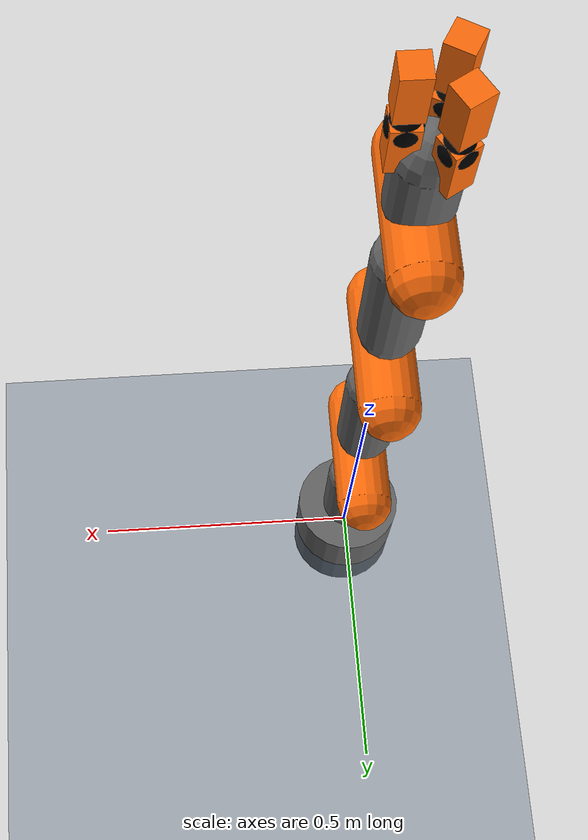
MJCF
<?xml version="1.0" encoding="utf-8"?>
<mujoco model="iiwa14_with_three_finger_gripper">
  <compiler angle="radian" autolimits="true"/>

  <option integrator="implicitfast"/>

  <default>
    <default class="iiwa">
      <material specular="0.5" shininess="0.25"/>
      <joint axis="0 0 1" damping="0.1"/>
      <general gaintype="fixed" biastype="affine" gainprm="2000" biasprm="0 -2000 -200"/>
      <default class="joint1">
        <joint range="-2.96706 2.96706"/>
        <general ctrlrange="-2.96706 2.96706"/>
        <default class="joint2">
          <joint range="-2.0944 2.0944"/>
          <general ctrlrange="-2.0944 2.0944"/>
        </default>
      </default>
      <default class="joint3">
        <joint range="-3.05433 3.05433"/>
        <general ctrlrange="-3.05433 3.05433"/>
      </default>
      <default class="visual">
        <geom type="capsule" size="0.05" contype="0" conaffinity="0" group="2" material="gray"/>
      </default>
      <default class="collision">
        <geom group="3"/>
      </default>
      <site size="0.001" rgba="1 0 0 1" group="4"/>

      <!-- Gripper defaults -->
      <default class="gripper">
        <joint damping="0.5" frictionloss="0.1"/>
        <default class="finger_joint">
          <joint range="0 0.12" axis="0 1 0"/>
          <general ctrlrange="0 0.12"/>
        </default>
        <default class="finger_bend_joint">
          <joint range="-1.57 1.57" axis="1 0 0" damping="0.1"/>
          <general ctrlrange="-1.57 1.57"/>
        </default>
      </default>
      <default class="gripper_visual">
        <geom type="box" size="0.02 0.02 0.04" contype="0" conaffinity="0" group="2" material="orange"/>
      </default>
      <default class="gripper_collision">
        <geom group="3"/>
      </default>
    </default>
  </default>

  <asset>
    <texture name="skybox" type="skybox" builtin="gradient" rgb1="0.3 0.5 0.7" rgb2="0 0 0" width="512" height="512"/>
    <texture name="grid" type="2d" builtin="checker" rgb1="0.1 0.2 0.3" rgb2="0.2 0.3 0.4" width="512" height="512" mark="edge" markrgb="0.8 0.8 0.8"/>
    <material name="grid" texture="grid" texrepeat="1 1" texuniform="true" reflectance="0.2"/>
    <material class="iiwa" name="gray" rgba="0.4 0.4 0.4 1"/>
    <material class="iiwa" name="light_gray" rgba="0.6 0.6 0.6 1"/>
    <material class="iiwa" name="black" rgba="0 0 0 1"/>
    <material class="iiwa" name="orange" rgba="1 0.423529 0.0392157 1"/>
  </asset>

  <worldbody>
    <light name="top" pos="0 0 2" mode="trackcom"/>
    <geom name="floor" pos="0 0 -0.01" size="1 1 0.01" type="plane" material="grid"/>
    <body name="base" childclass="iiwa">
      <inertial mass="5" pos="-0.1 0 0.07" diaginertia="0.05 0.06 0.03"/>
      <geom class="visual" type="cylinder" size="0.1 0.1"/>
      <geom class="collision" size="0.12" pos="0 0 0.03"/>
      <geom class="collision" size="0.08" pos="-0.08 0 0.103"/>
      <geom class="collision" size="0.08" pos="-0.08 0 0.04"/>
      <geom class="collision" size="0.1" pos="0 0 0.14"/>
      <body name="link1" pos="0 0 0.1575">
        <inertial mass="5.76" pos="0 -0.03 0.12" diaginertia="0.0333 0.033 0.0123"/>
        <joint name="joint1" class="joint1"/>
        <geom class="visual" type="capsule" size="0.05 0.1"/>
        <geom class="collision" size="0.08" pos="0 0 -0.0005"/>
        <geom class="collision" size="0.075" pos="0.01 -0.025 0.0425"/>
        <geom class="collision" size="0.075" pos="-0.01 -0.025 0.0425"/>
        <geom class="collision" size="0.07" pos="0.01 -0.045 0.1025"/>
        <geom class="collision" size="0.07" pos="-0.01 -0.045 0.1025"/>
        <body name="link2" pos="0 0 0.2025" quat="0 0 1 1">
          <inertial mass="6.35" pos="0.0003 0.059 0.042" diaginertia="0.0305 0.0304 0.011" quat="0 0 1 1"/>
          <joint name="joint2" class="joint2"/>
          <geom class="visual" type="capsule" size="0.05 0.1" material="orange"/>
          <geom class="collision" size="0.095" pos="0 0 -0.01"/>
          <geom class="collision" size="0.09" pos="0 0 0.045"/>
          <geom class="collision" size="0.07" pos="-0.01 0.04 0.054"/>
          <geom class="collision" size="0.065" pos="-0.01 0.09 0.04"/>
          <geom class="collision" size="0.065" pos="-0.01 0.13 0.02"/>
          <geom class="collision" size="0.07" pos="0.01 0.04 0.054"/>
          <geom class="collision" size="0.065" pos="0.01 0.09 0.04"/>
          <geom class="collision" size="0.065" pos="0.01 0.13 0.02"/>
          <geom class="collision" size="0.075" pos="0 0.18 0"/>
          <body name="link3" pos="0 0.2045 0" quat="0 0 1 1">
            <inertial mass="3.5" pos="0 0.03 0.13" diaginertia="0.025 0.0238 0.0076"/>
            <joint name="joint3" class="joint1"/>
            <geom class="visual" type="capsule" size="0.05 0.1"/>
            <geom class="collision" size="0.075" pos="0 0 0.0355"/>
            <geom class="collision" size="0.06" pos="0.01 0.023 0.0855"/>
            <geom class="collision" size="0.055" pos="0.01 0.048 0.1255"/>
            <geom class="collision" size="0.06" pos="0.01 0.056 0.1755"/>
            <geom class="collision" size="0.06" pos="-0.01 0.023 0.0855"/>
            <geom class="collision" size="0.055" pos="-0.01 0.048 0.1255"/>
            <geom class="collision" size="0.06" pos="-0.01 0.056 0.1755"/>
            <geom class="collision" size="0.075" pos="0 0.045 0.2155"/>
            <geom class="collision" size="0.075" pos="0 0 0.2155"/>
            <body name="link4" pos="0 0 0.2155" quat="1 1 0 0">
              <inertial mass="3.5" pos="0 0.067 0.034" diaginertia="0.017 0.0164 0.006" quat="1 1 0 0"/>
              <joint name="joint4" class="joint2"/>
              <geom class="visual" type="capsule" size="0.05 0.1" material="orange"/>
              <geom class="collision" size="0.078" pos="0 0.01 0.046"/>
              <geom class="collision" size="0.06" pos="0.01 0.06 0.052"/>
              <geom class="collision" size="0.065" pos="0.01 0.12 0.034"/>
              <geom class="collision" size="0.06" pos="-0.01 0.06 0.052"/>
              <geom class="collision" size="0.065" pos="-0.01 0.12 0.034"/>
              <geom class="collision" size="0.075" pos="0 0.184 0"/>
              <body name="link5" pos="0 0.1845 0" quat="0 0 1 1">
                <inertial mass="3.5" pos="0.0001 0.021 0.076" diaginertia="0.01 0.0087 0.00449"/>
                <joint name="joint5" class="joint1"/>
                <geom class="visual" type="capsule" size="0.05 0.1"/>
                <geom class="collision" size="0.075" pos="0 0 0.0335"/>
                <geom class="collision" size="0.05" pos="-0.012 0.031 0.0755"/>
                <geom class="collision" size="0.05" pos="0.012 0.031 0.0755"/>
                <geom class="collision" size="0.04" pos="-0.012 0.06 0.1155"/>
                <geom class="collision" size="0.04" pos="0.012 0.06 0.1155"/>
                <geom class="collision" size="0.04" pos="-0.01 0.065 0.1655"/>
                <geom class="collision" size="0.04" pos="0.01 0.065 0.1655"/>
                <geom class="collision" size="0.035" pos="-0.012 0.065 0.1855"/>
                <geom class="collision" size="0.035" pos="0.012 0.065 0.1855"/>
                <body name="link6" pos="0 0 0.2155" quat="1 1 0 0">
                  <inertial mass="1.8" pos="0 0.0006 0.0004" diaginertia="0.0049 0.0047 0.0036" quat="1 1 0 0"/>
                  <joint name="joint6" class="joint2"/>
                  <geom class="visual" type="capsule" size="0.05 0.1" material="orange"/>
                  <geom class="collision" size="0.055" pos="0 0 -0.059"/>
                  <geom class="collision" size="0.065" pos="0 -0.03 0.011"/>
                  <geom class="collision" size="0.08"/>
                  <body name="link7" pos="0 0.081 0" quat="0 0 1 1">
                    <inertial mass="1.2" pos="0 0 0.02" diaginertia="0.001 0.001 0.001"/>
                    <joint name="joint7" class="joint3"/>
                    <geom class="visual" type="capsule" size="0.05 0.05"/>
                    <geom class="collision" size="0.06" pos="0 0 0.001"/>
                    <site pos="0 0 0.045" name="attachment_site"/>

                    <!-- 三指夹爪 -->
                    <body name="gripper_base" pos="0 0 0.045">
                      <inertial mass="0.1" pos="0 0 0" diaginertia="0.001 0.001 0.001"/>
                      <geom class="visual" type="box" size="0.02 0.02 0.02" material="black"/>
                      <geom class="collision" type="box" size="0.02 0.02 0.02"/>

                      <!-- 手指1 -->
                      <body name="finger1_base" pos="0.04 0 0.02" euler="0 0 0">
                        <inertial mass="0.005" pos="0 0 0.02" diaginertia="0.0001 0.0001 0.0001"/>
                        <joint name="finger_joint1" class="finger_joint"/>
                        <geom class="gripper_visual" pos="0 0 0.02" material="orange"/>
                        <geom class="gripper_collision" type="box" size="0.02 0.02 0.02"/>

                        <!-- 连接球体 -->
                        <body name="finger1_link" pos="0 0 0.045">
                          <inertial mass="0.001" pos="0 0 0" diaginertia="0.00001 0.00001 0.00001"/>
                          <geom type="sphere" size="0.025" pos="0 0 0" material="black" contype="0" conaffinity="0" group="2"/>
                          <geom type="sphere" size="0.025" pos="0 0 0" group="3"/>

                          <!-- 手指第一节 -->
                          <body name="finger1_tip" pos="0 0 0.05">
                            <inertial mass="0.005" pos="0 0 0.02" diaginertia="0.0001 0.0001 0.0001"/>
                            <joint name="finger1_bend" class="finger_bend_joint"/>
                            <geom class="gripper_visual" pos="0 0 0.02" material="orange"/>
                            <geom class="gripper_collision" type="box" size="0.02 0.02 0.02"/>
                          </body>
                        </body>
                      </body>

                      <!-- 手指2 -->
                      <body name="finger2_base" pos="-0.02 0.0346 0.02" euler="0 0 2.0944">
                        <inertial mass="0.005" pos="0 0 0.02" diaginertia="0.0001 0.0001 0.0001"/>
                        <joint name="finger_joint2" class="finger_joint"/>
                        <geom class="gripper_visual" pos="0 0 0.02" material="orange"/>
                        <geom class="gripper_collision" type="box" size="0.02 0.02 0.02"/>

                        <!-- 连接球体 -->
                        <body name="finger2_link" pos="0 0 0.045">
                          <inertial mass="0.001" pos="0 0 0" diaginertia="0.00001 0.00001 0.00001"/>
                          <geom type="sphere" size="0.025" pos="0 0 0" material="black" contype="0" conaffinity="0" group="2"/>
                          <geom type="sphere" size="0.025" pos="0 0 0" group="3"/>

                          <!-- 手指第二节 -->
                          <body name="finger2_tip" pos="0 0 0.05">
                            <inertial mass="0.005" pos="0 0 0.02" diaginertia="0.0001 0.0001 0.0001"/>
                            <joint name="finger2_bend" class="finger_bend_joint"/>
                            <geom class="gripper_visual" pos="0 0 0.02" material="orange"/>
                            <geom class="gripper_collision" type="box" size="0.02 0.02 0.02"/>
                          </body>
                        </body>
                      </body>

                      <!-- 手指3 -->
                      <body name="finger3_base" pos="-0.02 -0.0346 0.02" euler="0 0 4.1888">
                        <inertial mass="0.005" pos="0 0 0.02" diaginertia="0.0001 0.0001 0.0001"/>
                        <joint name="finger_joint3" class="finger_joint"/>
                        <geom class="gripper_visual" pos="0 0 0.02" material="orange"/>
                        <geom class="gripper_collision" type="box" size="0.02 0.02 0.02"/>

                        <!-- 连接球体 -->
                        <body name="finger3_link" pos="0 0 0.045">
                          <inertial mass="0.001" pos="0 0 0" diaginertia="0.00001 0.00001 0.00001"/>
                          <geom type="sphere" size="0.025" pos="0 0 0" material="black" contype="0" conaffinity="0" group="2"/>
                          <geom type="sphere" size="0.025" pos="0 0 0" group="3"/>

                          <!-- 手指第三节 -->
                          <body name="finger3_tip" pos="0 0 0.05">
                            <inertial mass="0.005" pos="0 0 0.02" diaginertia="0.0001 0.0001 0.0001"/>
                            <joint name="finger3_bend" class="finger_bend_joint"/>
                            <geom class="gripper_visual" pos="0 0 0.02" material="orange"/>
                            <geom class="gripper_collision" type="box" size="0.02 0.02 0.02"/>
                          </body>
                        </body>
                      </body>
                    </body>
                  </body>
                </body>
              </body>
            </body>
          </body>
        </body>
      </body>
    </body>
  </worldbody>

  <contact>
    <exclude body1="base" body2="link1"/>
    <exclude body1="base" body2="link2"/>
    <exclude body1="base" body2="link3"/>
    <exclude body1="link1" body2="link3"/>
    <exclude body1="link3" body2="link5"/>
    <exclude body1="link4" body2="link7"/>
    <exclude body1="link5" body2="link7"/>
  </contact>

  <actuator>
    <general name="actuator1" joint="joint1" class="joint1"/>
    <general name="actuator2" joint="joint2" class="joint2"/>
    <general name="actuator3" joint="joint3" class="joint1"/>
    <general name="actuator4" joint="joint4" class="joint2"/>
    <general name="actuator5" joint="joint5" class="joint1"/>
    <general name="actuator6" joint="joint6" class="joint2"/>
    <general name="actuator7" joint="joint7" class="joint3"/>

    <!-- 夹爪驱动 -->
    <general name="gripper_actuator1" joint="finger_joint1" class="finger_joint"/>
    <general name="gripper_actuator2" joint="finger_joint2" class="finger_joint"/>
    <general name="gripper_actuator3" joint="finger_joint3" class="finger_joint"/>

    <!-- 弯曲关节驱动 -->
    <general name="finger1_bend_actuator" joint="finger1_bend" class="finger_bend_joint"/>
    <general name="finger2_bend_actuator" joint="finger2_bend" class="finger_bend_joint"/>
    <general name="finger3_bend_actuator" joint="finger3_bend" class="finger_bend_joint"/>
  </actuator>

  <keyframe>
    <key name="home" qpos="0 0.785398 0 -1.5708 0 0 0 0 0 0 0 0 0" ctrl="0 0.785398 0 -1.5708 0 0 0 0 0 0 0 0 0"/>
  </keyframe>
</mujoco>
